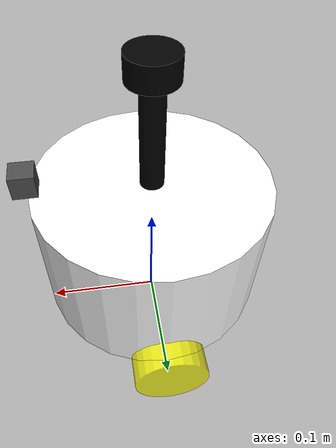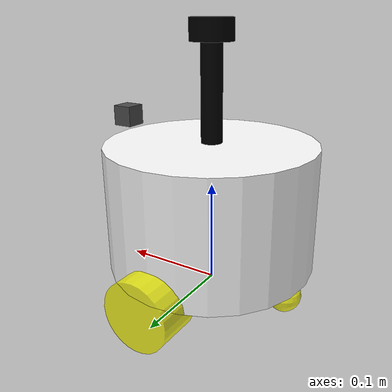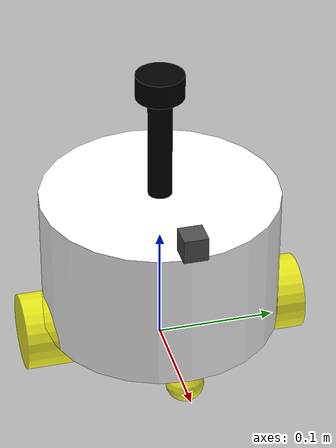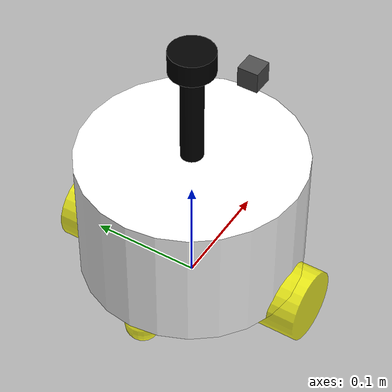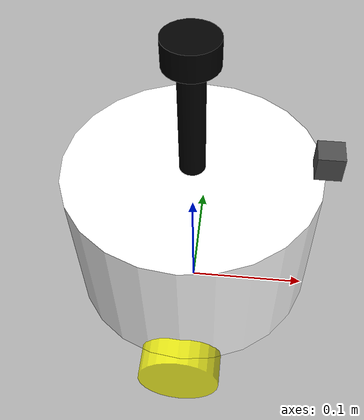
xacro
<?xml version="1.0"?>
<robot  xmlns:xacro="http://www.ros.org/wiki/xacro"       name="fish_robot">
<!-- 基础部分 base——link -->
<xacro:include filename="$(find robot_description)/urdf/fishbot/base.urdf.xacro"/>
<!-- 传感器部分 -->
<xacro:include filename="$(find robot_description)/urdf/fishbot/sensor/imu.urdf.xacro"/>
<xacro:include filename="$(find robot_description)/urdf/fishbot/sensor/camera.urdf.xacro"/>
<xacro:include filename="$(find robot_description)/urdf/fishbot/sensor/laser.urdf.xacro"/>
<!-- 执行器部分 -->
<xacro:include filename="$(find robot_description)/urdf/fishbot/actuator/wheel.urdf.xacro"/>
<xacro:include filename="$(find robot_description)/urdf/fishbot/actuator/caster.urdf.xacro"/>

<!-- 插件部分 -->
<xacro:include filename="$(find robot_description)/urdf/fishbot/plugins/gazebo_control_plugin.xacro"/>
<xacro:include filename="$(find robot_description)/urdf/fishbot/plugins/gazebo_sensor_plugin.xacro"/>
<xacro:include filename="$(find robot_description)/urdf/fishbot/fishbot.ros2_control.xacro"/>

<xacro:base_xacro length="0.12" radius="0.10"/>
<xacro:imu_xacro xyz="0.0 0.0 0.02"/>
<xacro:camera_xacro xyz="0.10 0.0 0.075"/>
<xacro:laser_xacro xyz="0.0 0.0 0.10"/>

<xacro:wheel_xacro wheel_name="left_wheel" xyz="0 0.10 -0.06"/>
<xacro:wheel_xacro wheel_name="right_wheel" xyz="0 -0.10 -0.06"/>
<xacro:caster_xacro caster_name="front_wheel" xyz="0.08 0 -0.076"/>
<xacro:caster_xacro caster_name="back_wheel" xyz="-0.08 0 -0.076"/>

<xacro:gazebo_sensor_plugin />
<xacro:fishbot_ros2_control />

</robot>

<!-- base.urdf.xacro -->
<robot xmlns:xacro="http://www.ros.org/wiki/xacro">
<xacro:include filename="$(find robot_description)/urdf/fishbot/common_inertia.xacro"/>

    <xacro:macro name="base_xacro" params="length radius">
        <link name="base_footprint"/>

        <link name="base_link">
            <visual>
                <origin xyz="0.0 0.0 0.0" rpy="0.0 0.0 0.0"/>
                <geometry>
                    <cylinder radius="${radius}" length="${length}"/>
                </geometry>
                <material name="white">
                    <color rgba="1.0 1.0 1.0 1.0"/>
                </material>
            </visual>
            <collision>
                 <origin xyz="0.0 0.0 0.0" rpy="0.0 0.0 0.0"/>
                <geometry>
                    <cylinder radius="${radius}" length="${length}"/>
                </geometry>
                <material name="white">
                    <color rgba="1.0 1.0 1.0 1.0"/>
                </material>
            </collision>
            <xacro:cylinder_inertia m="1.0" r="${radius}" h="${length}"/>
        </link>
        <joint name="joint_name" type="fixed">
            <origin xyz="0.0 0.0 ${length/2+0.032-0.01}" rpy="0.0 0.0 0.0"/>
            <parent link="base_footprint"/>
            <child link="base_link"/>

        </joint>
    </xacro:macro>
</robot>

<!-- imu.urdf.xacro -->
<robot xmlns:xacro="http://www.ros.org/wiki/xacro">
<xacro:include filename="$(find robot_description)/urdf/fishbot/common_inertia.xacro"/>

    <xacro:macro name="imu_xacro" params="xyz">
        <link name="imu_link">
            <visual>
                <origin xyz="0.0 0.0 0.0" rpy="0.0 0.0 0.0"/>
                <geometry>
                    <box size="0.02 0.02 0.02"/>
                </geometry>
                <material name="black">
                    <color rgba="1.0 0.4 0.7 1.0"/>
                </material>
            </visual>
            <collision>
                <origin xyz="0.0 0.0 0.0" rpy="0.0 0.0 0.0"/>
                <geometry>
                    <box size="0.02 0.02 0.02"/>
                </geometry>
                <material name="black">
                    <color rgba="1.0 0.4 0.7 1.0"/>
                </material>
            </collision>
            <xacro:box_inertia m="0.05" w="0.02" h="0.02" d="0.02"/>

        </link>
        <joint name="imu_joint" type="fixed">
            <parent link="base_link"/>
            <child link="imu_link"/>
            <origin xyz="${xyz}" rpy="0.0 0.0 0.0"/>
        </joint>
    </xacro:macro>
</robot>

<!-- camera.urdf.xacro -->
<robot xmlns:xacro="http://www.ros.org/wiki/xacro">
<xacro:include filename="$(find robot_description)/urdf/fishbot/common_inertia.xacro"/>

    <xacro:macro name="camera_xacro" params="xyz">
        <link name="camera_link">
            <visual>
                <origin xyz="0.0 0.0 0.0" rpy="0.0 0.0 0.0"/>
                <geometry>
                    <box size="0.02 0.02 0.02"/>
                </geometry>
                <material name="black">
                    <color rgba="0.3 0.3 0.3 1.0"/>
                </material>
            </visual>
            <collision>
                 <origin xyz="0.0 0.0 0.0" rpy="0.0 0.0 0.0"/>
                <geometry>
                    <box size="0.02 0.02 0.02"/>
                </geometry>
                <material name="black">
                    <color rgba="0.3 0.3 0.3 1.0"/>
                </material>
            </collision>
            <xacro:box_inertia m="0.1" w="0.02" h="0.10" d="0.02"/>

        </link>

        <link name="camera_optical_link"></link>

        <joint name="camera_joint" type="fixed">
            <parent link="base_link"/>
            <child link="camera_link"/>
            <origin xyz="${xyz}" rpy="0.0 0.0 0.0"/>
        </joint>

        <joint name="camera_optical_joint" type="fixed">
            <parent link="base_link"/>
            <child link="camera_optical_link"/>
            <origin xyz="0 0 0" rpy="${-pi/2} 0.0 ${-pi/2}"/>
        </joint>

    </xacro:macro>
</robot>

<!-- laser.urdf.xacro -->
<robot xmlns:xacro="http://www.ros.org/wiki/xacro">
<xacro:include filename="$(find robot_description)/urdf/fishbot/common_inertia.xacro"/>

    <xacro:macro name="laser_xacro" params="xyz">
        <!-- 添加支撑杆用于安装雷达 -->
        <link name="laser_cylinder_link">
            <visual>
                <origin xyz="0.0 0.0 0.0" rpy="0.0 0.0 0.0"/>
                <geometry>
                    <cylinder radius="0.01" length="0.10"/>
                </geometry>
                <material name="black">
                    <color rgba="0.0 0.0 0.0 1.0"/>
                </material>
            </visual>
            <collision>
                <origin xyz="0.0 0.0 0.0" rpy="0.0 0.0 0.0"/>
                <geometry>
                    <cylinder radius="0.01" length="0.10"/>
                </geometry>
                <material name="black">
                    <color rgba="0.0 0.0 0.0 1.0"/>
                </material>
            </collision>
            <xacro:cylinder_inertia m="0.05" r="0.01" h="0.10"/>

        </link>
        <joint name="laser_cylinder_joint" type="fixed">
            <parent link="base_link"/>
            <child link="laser_cylinder_link"/>
            <origin xyz="${xyz}" rpy="0.0 0.0 0.0"/>
        </joint>
        <!-- 雷达描述 -->
        <link name="laser_link">
            <visual>
                <origin xyz="0.0 0.0 0.0" rpy="0.0 0.0 0.0"/>
                <geometry>
                    <cylinder radius="0.02" length="0.02"/>
                </geometry>
                <material name="black">
                    <color rgba="0.0 0.0 0.0 1.0"/>
                </material>
            </visual>
            <collision>
                 <origin xyz="0.0 0.0 0.0" rpy="0.0 0.0 0.0"/>
                <geometry>
                    <cylinder radius="0.02" length="0.02"/>
                </geometry>
                <material name="black">
                    <color rgba="0.0 0.0 0.0 1.0"/>
                </material>
            </collision>
            <xacro:cylinder_inertia m="0.10" r="0.02" h="0.02"/>

        </link>
        <joint name="laser_joint" type="fixed">
            <parent link="laser_cylinder_link"/>
            <child link="laser_link"/>
            <origin xyz="0.0 0.0 0.06" rpy="0.0 0.0 0.0"/>
        </joint>

        <gazebo reference='laser_cylinder_link'>
            <material>Gazebo/Black</material>
        </gazebo>
        <gazebo reference='laser_link'>
            <material>Gazebo/Black</material>
        </gazebo>

    </xacro:macro>
</robot>

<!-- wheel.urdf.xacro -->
<robot xmlns:xacro="http://www.ros.org/wiki/xacro">
<xacro:include filename="$(find robot_description)/urdf/fishbot/common_inertia.xacro"/>

    <xacro:macro name="wheel_xacro" params="wheel_name xyz">
        <link name="${wheel_name}_link">
            <visual>
                <origin xyz="0.0 0.0 0.0" rpy="1.57079 0.0 0.0"/>
                <geometry>
                    <cylinder radius="0.032" length="0.04"/>
                </geometry>
                <material name="yellow">
                    <color rgba="1.0 1.0 0.0 0.8"/>
                </material>
            </visual>
            <collision>
                 <origin xyz="0.0 0.0 0.0" rpy="1.57079 0.0 0.0"/>
                <geometry>
                    <cylinder radius="0.032" length="0.04"/>
                </geometry>
                <material name="yellow">
                    <color rgba="1.0 1.0 0.0 0.8"/>
                </material>
            </collision>
            <xacro:cylinder_inertia m="0.05" r="0.032 " h="0.04"/>

        </link>
        <joint name="${wheel_name}_joint" type="continuous">
            <parent link="base_link"/>
            <child link="${wheel_name}_link"/>
            <origin xyz="${xyz}" rpy="0.0 0.0 0.0"/>
            <axis xyz="0 1 0"/>
        </joint>

        <gazebo reference="${wheel_name}_link">
            <mu1 value="20.0"/>
            <mu2 value="20.0"/>
            <kp value="1000000000.0"/>
            <kp value="1.0"/>

        </gazebo>

    </xacro:macro>
</robot>

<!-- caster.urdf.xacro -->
<robot xmlns:xacro="http://www.ros.org/wiki/xacro">
<xacro:include filename="$(find robot_description)/urdf/fishbot/common_inertia.xacro"/>

    <xacro:macro name="caster_xacro" params="caster_name xyz">
        <link name="${caster_name}_link">
            <visual>
                <origin xyz="0.0 0.0 0.0" rpy="0.0 0.0 0.0"/>
                <geometry>
                    <sphere radius="0.016"/>
                </geometry>
                <material name="yellow">
                    <color rgba="1.0 1.0 0.0 0.8"/>
                </material>
            </visual>
            <collision>
                  <origin xyz="0.0 0.0 0.0" rpy="0.0 0.0 0.0"/>
                <geometry>
                    <sphere radius="0.016"/>
                </geometry>
                <material name="yellow">
                    <color rgba="1.0 1.0 0.0 0.8"/>
                </material>
            </collision>
            <xacro:sphere_inertia m="0.05" r="0.016" />

        </link>
        <joint name="${caster_name}_joint" type="fixed">
            <parent link="base_link"/>
            <child link="${caster_name}_link"/>
            <origin xyz="${xyz}" rpy="0.0 0.0 0.0"/>
        </joint>

        <gazebo reference="${caster_name}_link">
            <mu1 value="0.0"/>
            <mu2 value="0.0"/>
            <kp value="1000000000.0"/>
            <kp value="1.0"/>

        </gazebo>

    </xacro:macro>
</robot>
